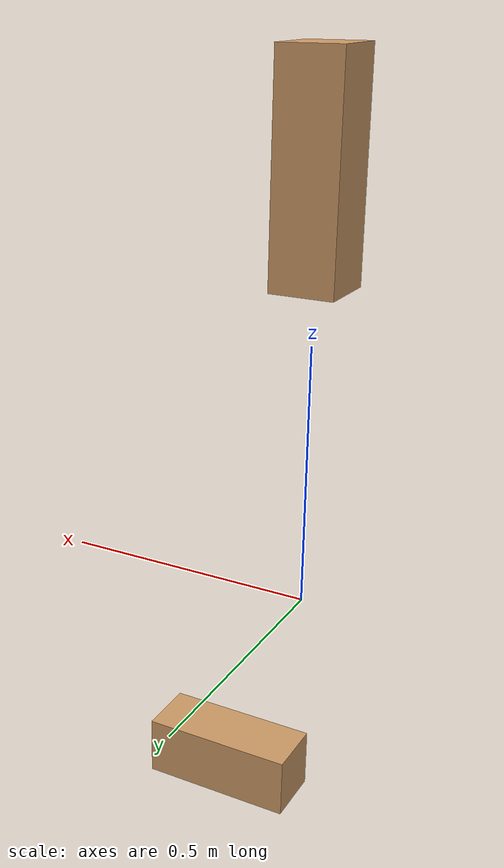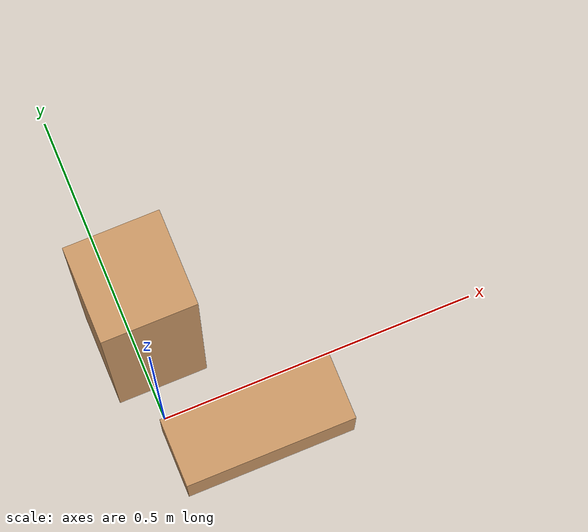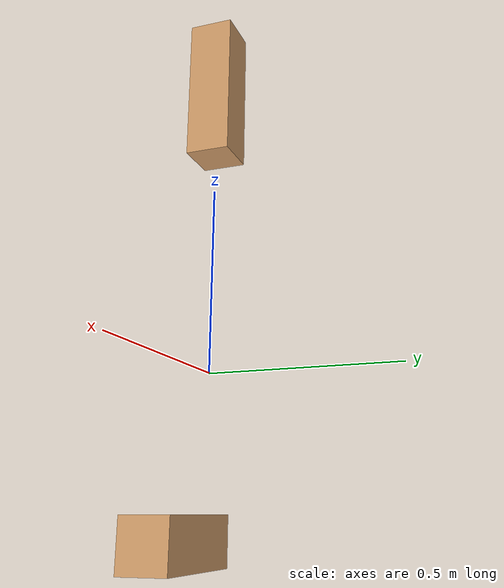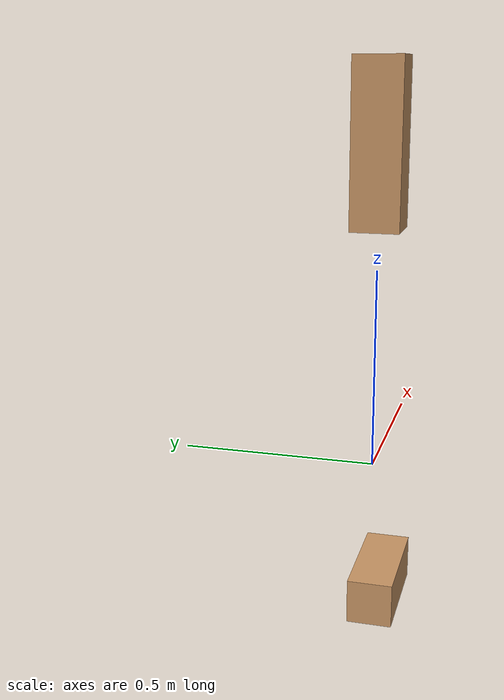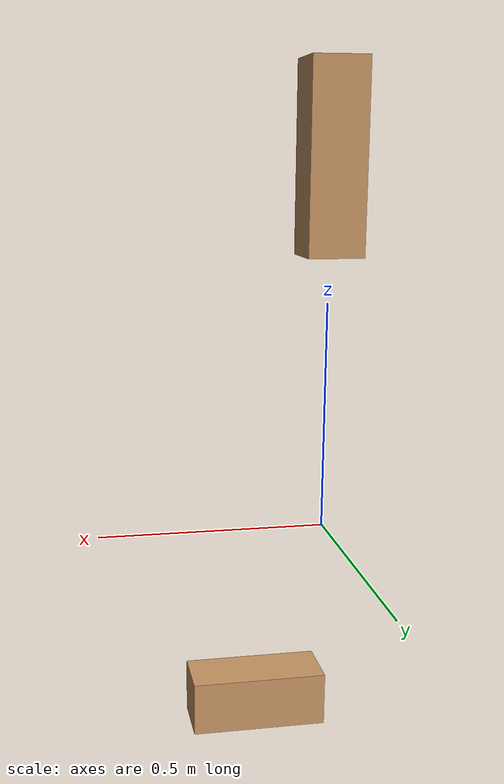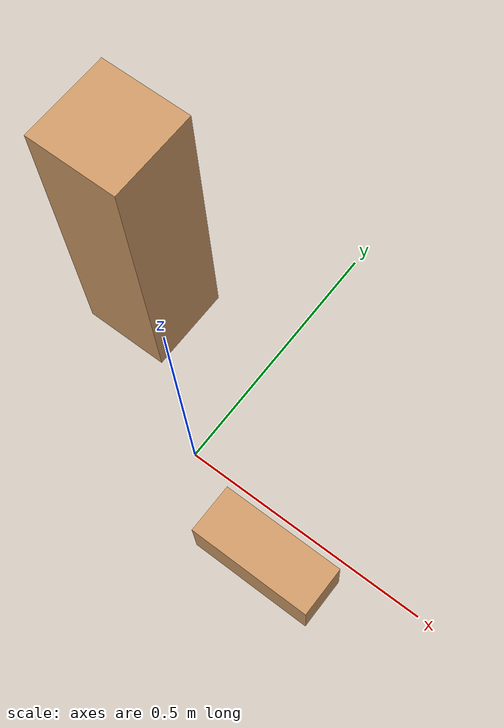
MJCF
<mujoco model="example">
  <default>
    <geom rgba=".8 .6 .4 1"/>
  </default>
  <asset>
    <texture type="skybox" builtin="gradient" rgb1=".3 .5 .7" rgb2="0 0 0" width="32" height="512"/>
    <texture name="grid" type="2d" builtin="checker" width="512" height="512" rgb1=".1 .2 .3" rgb2=".2 .3 .4"/>
    <material name="grid" texture="grid" texrepeat="1 1" texuniform="true" reflectance=".2"/>
    <texture type="2d" name="groundplane" builtin="checker" mark="edge" rgb1="0.2 0.3 0.4" rgb2="0.1 0.2 0.3"
      markrgb="0.8 0.8 0.8" width="300" height="300"/>
    <material name="groundplane" texture="groundplane" texuniform="true" texrepeat="5 5" reflectance="0.2"/>
  </asset>
  <worldbody>
    <light pos="0 1 1" dir="0 -1 -1" diffuse="1 1 1"/>
    <body pos="0 0 1">
      <joint type="ball"/>
      <geom type="box" size="0.06" fromto="0 0 0  0 0 -.4"/>
    </body>
    <body pos="0 0 -0.4">
      <joint axis="0 1 0"/>
      <joint axis="1 0 0"/>
      <geom type="box" size="0.06" fromto="0 0 0  .3 0 0"/>
    </body>
  </worldbody>
</mujoco>
